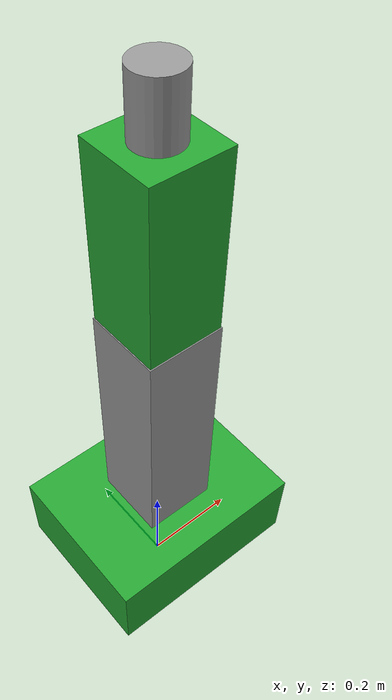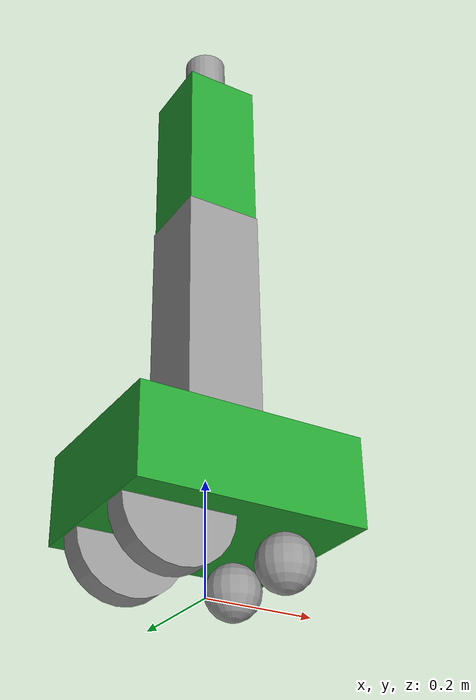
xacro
<?xml version="1.0" ?>
<robot xmlns:xacro="http://www.ros.org/wiki/xacro" >
    <xacro:property name="base_length" value="0.412" />
    <xacro:property name="base_width" value="0.323" />
    <xacro:property name="base_height" value="0.162" />

    <xacro:property name="lift_length" value="0.144" />
    <xacro:property name="lift_width" value="0.144" />
    <xacro:property name="lift_height" value="0.465" />
    <xacro:property name="lift_max" value="2.2" />

    <xacro:property name="controller_length" value="0.14" />
    <xacro:property name="controller_width" value="0.14" />
    <xacro:property name="controller_height" value="0.315" />

    <xacro:property name="head_radius" value="0.04" />
    <xacro:property name="head_length" value="0.1" />

    <xacro:property name="wheel_radius" value="0.1" />
    <xacro:property name="wheel_length" value="0.05" />

    <xacro:property name="caster_wheel_length" value="0.05" />

    <link name="base_footprint" />

    <link name="base_link">
        <visual>
            <geometry>
                <box size= "${base_length} ${base_width} ${base_height}" />
            </geometry>
            <origin xyz="0 0 ${base_height/2}" rpy="0 0 0" />
            <material name="green" />
        </visual>
        <collision>
            <geometry>
                <box size= "${base_length} ${base_width} ${base_height}" />
            </geometry>
            <origin xyz="0 0 ${base_height/2}" rpy="0 0 0" />
        </collision>
        <xacro:box_inertia m="5.0" x="${base_length}" y="${base_width}" z="${base_height}"
                            o_xyz="0 0 ${base_height/2}" o_rpy="0 0 0" />
    </link>

    <link name="lift_link">
        <visual>
            <geometry>
                <box size="${lift_length} ${lift_width} ${lift_height}" />
            </geometry>
            <origin xyz="0 0 ${lift_height/2}" rpy="0 0 0" />
            <material name="grey" />
        </visual>
        <collision>
            <geometry>
                <box size="${lift_length} ${lift_width} ${lift_height}" />
            </geometry>
            <origin xyz="0 0 ${lift_height/2}" rpy="0 0 0" />
        </collision>
        <xacro:box_inertia m="2.0" x="${lift_length}" y="${lift_width}" z="${lift_height}"
                            o_xyz="0 0 ${lift_height/2}" o_rpy="0 0 0" />
    </link>

    <link name="controller_link">
        <visual>
            <geometry>
                <box size="${controller_length} ${controller_width} ${controller_height}" />
            </geometry>
            <origin xyz="0 0 ${controller_height/2}" rpy="0 0 0" />
            <material name="green" />
        </visual>
        <collision>
            <geometry>
                <box size="${controller_length} ${controller_width} ${controller_height}" />
            </geometry>
            <origin xyz="0 0 ${controller_height/2}" rpy="0 0 0" />
        </collision>
        <xacro:box_inertia m="2.0" x="${controller_length}" y="${controller_width}" z="${controller_height}"
                            o_xyz="0 0 ${controller_height/2}" o_rpy="0 0 0" />
    </link>

    <link name="head_link">
        <visual>
            <geometry>
                <cylinder radius="${head_radius}" length="${head_length}" />
            </geometry>
            <origin xyz="0 0 ${head_length/2}" rpy="0 0 0" />
            <material name="grey" />
        </visual>
        <collision>
            <geometry>
                <cylinder radius="${head_radius}" length="${head_length}" />
            </geometry>
            <origin xyz="0 0 ${head_length/2}" rpy="0 0 0" />
        </collision>
        <xacro:cylinder_inertia m="0.5" r="${head_radius}" l="${head_length}" o_xyz="0 0 ${head_length/2}" o_rpy="0 0 0" />
    </link>

    <link name="left_arm_link">
    </link>

    <link name="right_arm_link" >
    </link>

    <link name="right_wheel_link">
        <visual>
            <geometry>
                <cylinder radius="${wheel_radius}" length="${wheel_length}" />
            </geometry>
            <origin xyz="0 0 0" rpy="${pi/2.0} 0 0" />
            <material name="grey" />
        </visual>
        <collision>
            <geometry>
                <cylinder radius="${wheel_radius}" length="${wheel_length}" />
            </geometry>
            <origin xyz="0 0 0" rpy="${pi/2.0} 0 0" />
        </collision>
        <xacro:cylinder_inertia m="1.0" r="${wheel_radius}" l="${wheel_length}"
                                    o_xyz="0 0 0" o_rpy="${pi / 2.0} 0 0" />
    </link>

    <link name="left_wheel_link">
        <visual>
            <geometry>
                <cylinder radius="${wheel_radius}" length="${wheel_length}" />
            </geometry>
            <origin xyz="0 0 0" rpy="${pi/2.0} 0 0" />
            <material name="grey" />
        </visual>
        <collision>
            <geometry>
                <cylinder radius="${wheel_radius}" length="${wheel_length}" />
            </geometry>
            <origin xyz="0 0 0" rpy="${pi/2.0} 0 0" />
        </collision>
        <xacro:cylinder_inertia m="1.0" r="${wheel_radius}" l="${wheel_length}"
                                    o_xyz="0 0 0" o_rpy="${pi / 2.0} 0 0" />
    </link>

    <link name ="left_caster_wheel_link">
        <visual>
            <geometry>
                <sphere radius="${caster_wheel_length}" />
            </geometry>
            <origin xyz="0 0 0" rpy="0 0 0" />
            <material name="grey" />
        </visual>
        <collision>
            <geometry>
                <sphere radius="${caster_wheel_length}" />
            </geometry>
            <origin xyz="0 0 0" rpy="0 0 0" />
            <material name="grey" />
        </collision>
        <xacro:sphere_inertia m="0.5" r="${caster_wheel_length}" o_xyz="0 0 0" o_rpy="0 0 0" />
    </link>

    <link name ="right_caster_wheel_link">
        <visual>
            <geometry>
                <sphere radius="${caster_wheel_length}" />
            </geometry>
            <origin xyz="0 0 0" rpy="0 0 0" />
            <material name="grey" />
        </visual>
        <collision>
            <geometry>
                <sphere radius="${caster_wheel_length}" />
            </geometry>
            <origin xyz="0 0 0" rpy="0 0 0" />
            <material name="grey" />
        </collision>
        <xacro:sphere_inertia m="0.5" r="${caster_wheel_length}" o_xyz="0 0 0" o_rpy="0 0 0" />
    </link>

    <joint name="base_joint" type="fixed">
        <parent link="base_footprint" />
        <child link="base_link" />
        <origin xyz="0 0 ${wheel_radius}" rpy="0 0 0" />
    </joint>

    <joint name="base_right_wheel_joint" type="continuous">
        <parent link="base_link" />
        <child link="right_wheel_link" />
        <origin xyz="${-base_length/4} ${-base_width/4} 0" rpy="0 0 0" />

        <axis xyz="0 1 0" />
    </joint>

    <joint name="base_left_wheel_joint" type="continuous">
        <parent link="base_link" />
        <child link="left_wheel_link" />
        <origin xyz="${-base_length/4} ${base_width/4} 0" rpy="0 0 0" />
        <axis xyz="0 1 0" />
    </joint>

    <joint name="base_left_caster_wheel_joint" type="fixed">
        <parent link="base_link" />
        <child link="left_caster_wheel_link" />
        <origin xyz="0.1 ${base_width/4} ${-caster_wheel_length}" rpy="0 0 0" />
    </joint>

    <joint name="base_right_caster_wheel_joint" type="fixed">
        <parent link="base_link" />
        <child link="right_caster_wheel_link" />
        <origin xyz="0.1 ${-base_width/4} ${-caster_wheel_length}" rpy="0 0 0" />
    </joint>

    <joint name="base_lift_joint" type="prismatic">
        <parent link ="base_link" />
        <child link="lift_link" />
        <axis xyz="0 0 1" />
        <origin xyz="0 0 ${base_height}" rpy="0 0 0" />
        <limit lower="0" upper="2.2" effort="100.0" velocity="100.0" />
    </joint>

    <joint name="lift_controller_joint" type="fixed">
        <parent link ="lift_link" />
        <child link="controller_link" />
        <origin xyz="0 0 ${lift_height}" rpy="0 0 0" />
    </joint>

    <joint name="controller_head_joint" type="fixed">
        <parent link ="controller_link" />
        <child link="head_link" />
        <origin xyz="0 0 ${controller_height}" rpy="0 0 0" />
    </joint>

    <joint name="head_left_arm_joint" type="fixed">
        <parent link="head_link" />
        <child link="left_arm_link" />
        <origin xyz="0 0.03 0.05" rpy=" ${-pi/2} ${pi/2} 0" />
    </joint>

    <joint name="head_right_arm_joint" type="fixed">
        <parent link="head_link" />
        <child link="right_arm_link" />
        <origin xyz="0 -0.03 0.05" rpy="${pi/2} ${-pi/2} 0" />
    </joint>
</robot>
